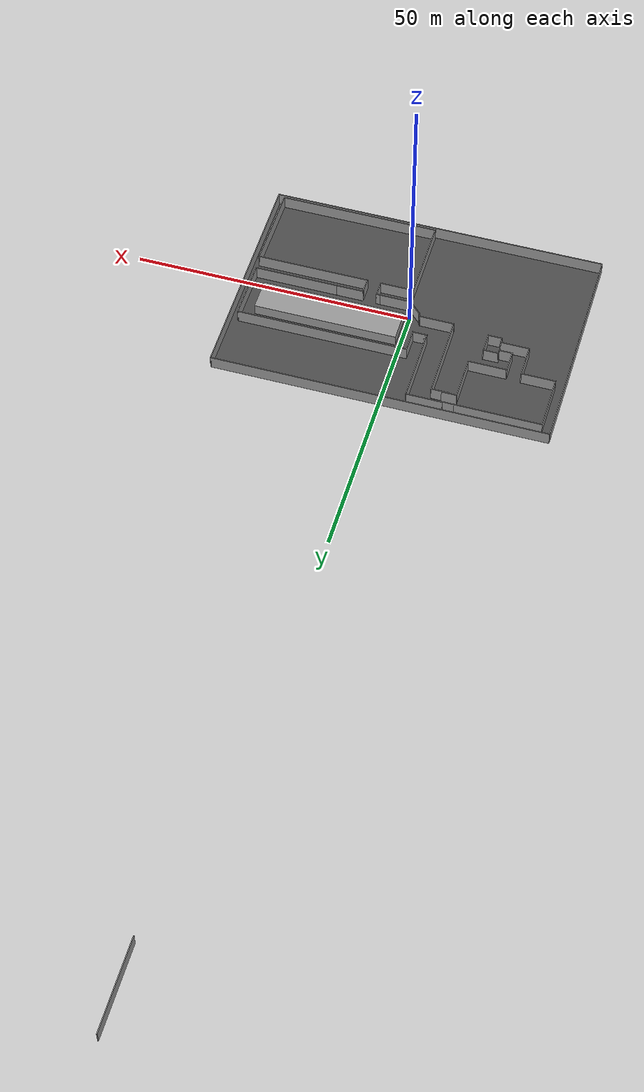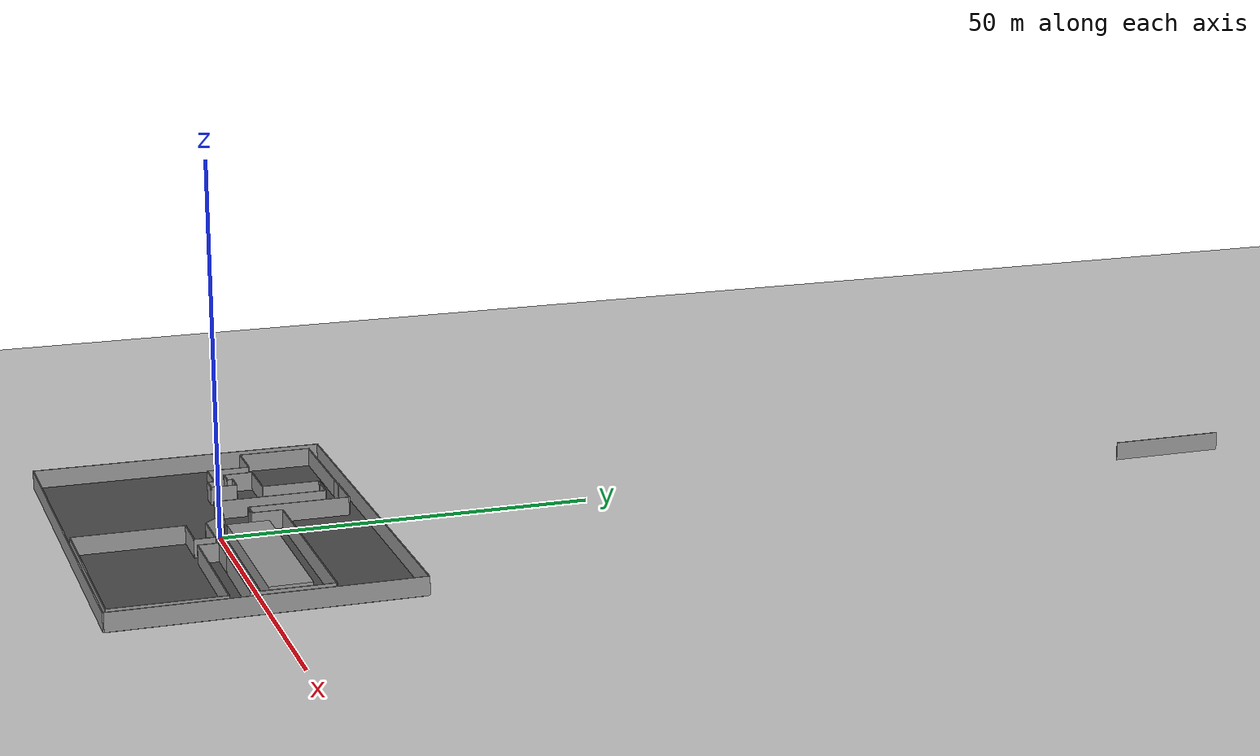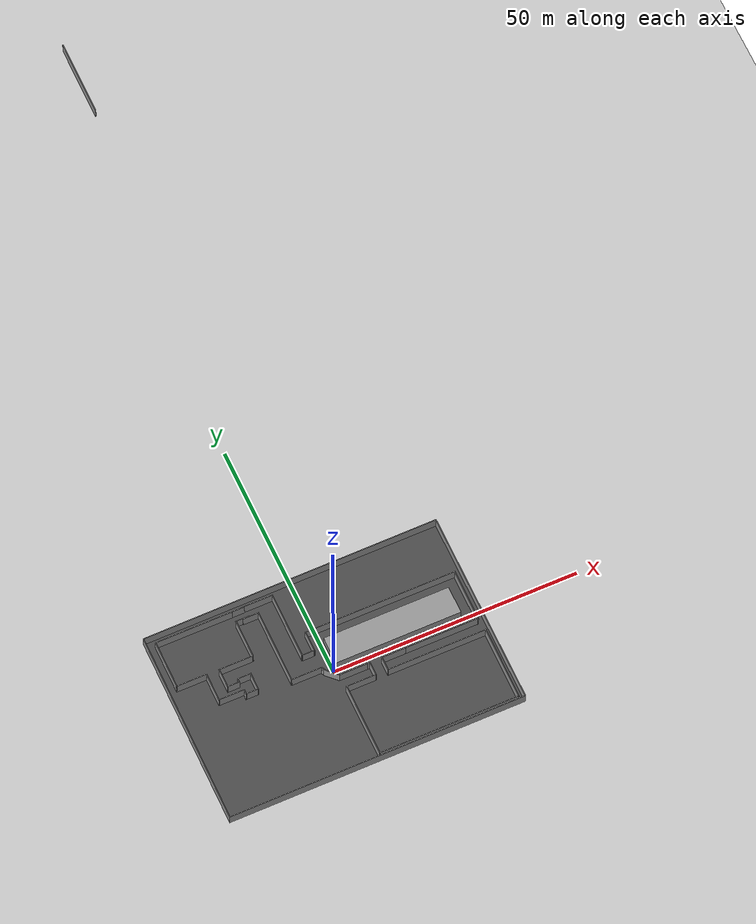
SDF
<sdf version="1.6">
 <world name="default">
  <light name="sun" type="directional">
   <pose>0 0 10 0 -0 0</pose>
   <diffuse>0.8 0.8 0.8 1</diffuse>
   <specular>0.2 0.2 0.2 1</specular>
   <attenuation>
    <range>1000</range>
    <constant>0.9</constant>
    <linear>0.01</linear>
    <quadratic>0.001</quadratic>
   </attenuation>
   <direction>-0.5 0.1 -0.9</direction>
  </light>
  <model name="ground_plane">
   <static>1</static>
   <link name="link">
    <collision name="collision">
     <geometry><plane><normal>0 0 1</normal><size>100 100</size></plane></geometry>
     <surface>
      <contact><collide_bitmask>65535</collide_bitmask></contact>
      <friction><ode><mu>100</mu><mu2>50</mu2></ode></friction>
     </surface>
    </collision>
    <visual name="visual">
     <cast_shadows>0</cast_shadows>
     <geometry><plane><normal>0 0 1</normal><size>100 100</size></plane></geometry>
     <material>
      <script><uri>file://media/materials/scripts/gazebo.material</uri><name>Gazebo/Grey</name></script>
     </material>
    </visual>
   </link>
  </model>
  <gravity>0 0 -9.8</gravity>
  <magnetic_field>6e-06 2.3e-05 -4.2e-05</magnetic_field>
  <atmosphere type="adiabatic"/>
  <physics name="default_physics" default="0" type="ode">
   <max_step_size>0.001</max_step_size>
   <real_time_factor>1</real_time_factor>
   <real_time_update_rate>1000</real_time_update_rate>
  </physics>
  <scene><ambient>0.4 0.4 0.4 1</ambient><background>0.7 0.7 0.7 1</background><shadows>1</shadows></scene>
  <audio><device>default</device></audio>
  <spherical_coordinates>
   <surface_model>EARTH_WGS84</surface_model>
   <latitude_deg>0</latitude_deg>
   <longitude_deg>0</longitude_deg>
   <elevation>0</elevation>
   <heading_deg>0</heading_deg>
  </spherical_coordinates>
  <model name="base1">
   <pose>0.082293 0.005919 0 0 -0 0</pose>
   <link name="Wall_0">
    <collision name="Wall_0_Collision">
     <geometry><box><size>60.15 0.15 2.5</size></box></geometry>
     <pose>0 0 1.25 0 -0 0</pose>
    </collision>
    <visual name="Wall_0_Visual">
     <pose>0 0 1.25 0 -0 0</pose>
     <geometry><box><size>60.15 0.15 2.5</size></box></geometry>
     <material>
      <script><uri>file://media/materials/scripts/gazebo.material</uri><name>Gazebo/Grey</name></script>
      <ambient>1 1 1 1</ambient>
     </material>
     <meta><layer>0</layer></meta>
    </visual>
    <pose>0 19.8688 0 0 -0 0.0025</pose>
   </link>
   <link name="Wall_1">
    <collision name="Wall_1_Collision">
     <geometry><box><size>39.9818 0.15 2.5</size></box></geometry>
     <pose>0 0 1.25 0 -0 0</pose>
    </collision>
    <visual name="Wall_1_Visual">
     <pose>0 0 1.25 0 -0 0</pose>
     <geometry><box><size>39.9818 0.15 2.5</size></box></geometry>
     <material>
      <script><uri>file://media/materials/scripts/gazebo.material</uri><name>Gazebo/Grey</name></script>
      <ambient>1 1 1 1</ambient>
     </material>
     <meta><layer>0</layer></meta>
    </visual>
    <pose>30 0.027935 0 0 -0 -1.5708</pose>
   </link>
   <link name="Wall_2">
    <collision name="Wall_2_Collision">
     <geometry><box><size>60.15 0.15 2.5</size></box></geometry>
     <pose>0 0 1.25 0 -0 0</pose>
    </collision>
    <visual name="Wall_2_Visual">
     <pose>0 0 1.25 0 -0 0</pose>
     <geometry><box><size>60.15 0.15 2.5</size></box></geometry>
     <material>
      <script><uri>file://media/materials/scripts/gazebo.material</uri><name>Gazebo/Grey</name></script>
      <ambient>1 1 1 1</ambient>
     </material>
     <meta><layer>0</layer></meta>
    </visual>
    <pose>0 -19.944 0 0 -0 3.14159</pose>
   </link>
   <link name="Wall_3">
    <collision name="Wall_3_Collision">
     <geometry><box><size>39.8318 0.15 2.5</size></box></geometry>
     <pose>0 0 1.25 0 -0 0</pose>
    </collision>
    <visual name="Wall_3_Visual">
     <pose>0 0 1.25 0 -0 0</pose>
     <geometry><box><size>39.8318 0.15 2.5</size></box></geometry>
     <material>
      <script><uri>file://media/materials/scripts/gazebo.material</uri><name>Gazebo/Grey</name></script>
      <ambient>1 1 1 1</ambient>
     </material>
     <meta><layer>0</layer></meta>
    </visual>
    <pose>-30 -0.047064 0 0 -0 1.5708</pose>
   </link>
   <static>1</static>
  </model>
  <model name="asphalt_plane">
   <static>1</static>
   <link name="link">
    <collision name="collision">
     <geometry><box><size>60.0234 39.7188 0.00153995</size></box></geometry>
    </collision>
    <visual name="visual">
     <cast_shadows>0</cast_shadows>
     <geometry><box><size>60.0234 39.7188 0.00153995</size></box></geometry>
     <material>
      <script>
       <uri>model://asphalt_plane/materials/scripts</uri>
       <uri>model://asphalt_plane/materials/textures</uri>
       <name>vrc/asphalt</name>
      </script>
     </material>
    </visual>
   </link>
   <pose>0.224679 -0.031142 0 0 -0 0</pose>
  </model>
  <model name="base2">
   <pose>14.8425 61.763 0 0 -0 0</pose>
   <link name="Wall_0">
    <collision name="Wall_0_Collision">
     <geometry><box><size>16 0.15 2.5</size></box></geometry>
     <pose>0 0 1.25 0 -0 0</pose>
    </collision>
    <visual name="Wall_0_Visual">
     <pose>0 0 1.25 0 -0 0</pose>
     <geometry><box><size>16 0.15 2.5</size></box></geometry>
     <material>
      <script><uri>file://media/materials/scripts/gazebo.material</uri><name>Gazebo/Grey</name></script>
      <ambient>1 1 1 1</ambient>
     </material>
     <meta><layer>0</layer></meta>
    </visual>
    <pose>-8.06233 73.3002 0 0 -0 -1.5708</pose>
   </link>
   <link name="Wall_13">
    <collision name="Wall_13_Collision">
     <geometry><box><size>28.449 0.15 2.5</size></box></geometry>
     <pose>0 0 1.25 0 -0 0</pose>
    </collision>
    <visual name="Wall_13_Visual">
     <pose>0 0 1.25 0 -0 0</pose>
     <geometry><box><size>28.449 0.15 2.5</size></box></geometry>
     <material>
      <script><uri>file://media/materials/scripts/gazebo.material</uri><name>Gazebo/Grey</name></script>
      <ambient>1 1 1 1</ambient>
     </material>
     <meta><layer>0</layer></meta>
    </visual>
    <pose>-0.067791 -81.2248 0 0 -0 3.14159</pose>
   </link>
   <link name="Wall_14">
    <collision name="Wall_14_Collision">
     <geometry><box><size>15 0.15 2.5</size></box></geometry>
     <pose>0 0 1.25 0 -0 0</pose>
    </collision>
    <visual name="Wall_14_Visual">
     <pose>0 0 1.25 0 -0 0</pose>
     <geometry><box><size>15 0.15 2.5</size></box></geometry>
     <material>
      <script><uri>file://media/materials/scripts/gazebo.material</uri><name>Gazebo/Grey</name></script>
      <ambient>1 1 1 1</ambient>
     </material>
     <meta><layer>0</layer></meta>
    </visual>
    <pose>-14.2173 -73.7998 0 0 -0 1.5708</pose>
   </link>
   <link name="Wall_16">
    <collision name="Wall_16_Collision">
     <geometry><box><size>15.0001 0.15 2.5</size></box></geometry>
     <pose>0 0 1.25 0 -0 0</pose>
    </collision>
    <visual name="Wall_16_Visual">
     <pose>0 0 1.25 0 -0 0</pose>
     <geometry><box><size>15.0001 0.15 2.5</size></box></geometry>
     <material>
      <script><uri>file://media/materials/scripts/gazebo.material</uri><name>Gazebo/Grey</name></script>
      <ambient>1 1 1 1</ambient>
     </material>
     <meta><layer>0</layer></meta>
    </visual>
    <pose>14.1492 -73.7998 0 0 -0 1.56171</pose>
   </link>
   <link name="Wall_18">
    <collision name="Wall_18_Collision">
     <geometry><box><size>6 0.15 2.5</size></box></geometry>
     <pose>0 0 1.25 0 -0 0</pose>
    </collision>
    <visual name="Wall_18_Visual">
     <pose>0 0 1.25 0 -0 0</pose>
     <geometry><box><size>6 0.15 2.5</size></box></geometry>
     <material>
      <script><uri>file://media/materials/scripts/gazebo.material</uri><name>Gazebo/Grey</name></script>
      <ambient>1 1 1 1</ambient>
     </material>
     <meta><layer>0</layer></meta>
    </visual>
    <pose>-11.2923 -66.3748 0 0 -0 0</pose>
   </link>
   <link name="Wall_20">
    <collision name="Wall_20_Collision">
     <geometry><box><size>20 0.15 2.5</size></box></geometry>
     <pose>0 0 1.25 0 -0 0</pose>
    </collision>
    <visual name="Wall_20_Visual">
     <pose>0 0 1.25 0 -0 0</pose>
     <geometry><box><size>20 0.15 2.5</size></box></geometry>
     <material>
      <script><uri>file://media/materials/scripts/gazebo.material</uri><name>Gazebo/Grey</name></script>
      <ambient>1 1 1 1</ambient>
     </material>
     <meta><layer>0</layer></meta>
    </visual>
    <pose>4.24665 -66.3748 0 0 -0 3.14159</pose>
   </link>
   <static>1</static>
  </model>
  <model name="base3">
   <pose>-19.1409 9.90963 0 0 -0 0</pose>
   <link name="Wall_24">
    <collision name="Wall_24_Collision">
     <geometry><box><size>15.5938 0.15 2.5</size></box></geometry>
     <pose>0 0 1.25 0 -0 0</pose>
    </collision>
    <visual name="Wall_24_Visual">
     <pose>0 0 1.25 0 -0 0</pose>
     <geometry><box><size>15.5938 0.15 2.5</size></box></geometry>
     <material>
      <script><uri>file://media/materials/scripts/gazebo.material</uri><name>Gazebo/Grey</name></script>
      <ambient>1 1 1 1</ambient>
     </material>
     <meta><layer>0</layer></meta>
    </visual>
    <pose>-1.30283 8.24113 0 0 -0 3.14159</pose>
   </link>
   <link name="Wall_25">
    <collision name="Wall_25_Collision">
     <geometry><box><size>9.93212 0.15 2.5</size></box></geometry>
     <pose>0 0 1.25 0 -0 0</pose>
    </collision>
    <visual name="Wall_25_Visual">
     <pose>0 0 1.25 0 -0 0</pose>
     <geometry><box><size>9.93212 0.15 2.5</size></box></geometry>
     <material>
      <script><uri>file://media/materials/scripts/gazebo.material</uri><name>Gazebo/Grey</name></script>
      <ambient>1 1 1 1</ambient>
     </material>
     <meta><layer>0</layer></meta>
    </visual>
    <pose>-9.025 3.35007 0 0 -0 -1.57083</pose>
   </link>
   <link name="Wall_26">
    <collision name="Wall_26_Collision">
     <geometry><box><size>6.18234 0.15 2.5</size></box></geometry>
     <pose>0 0 1.25 0 -0 0</pose>
    </collision>
    <visual name="Wall_26_Visual">
     <pose>0 0 1.25 0 -0 0</pose>
     <geometry><box><size>6.18234 0.15 2.5</size></box></geometry>
     <material>
      <script><uri>file://media/materials/scripts/gazebo.material</uri><name>Gazebo/Grey</name></script>
      <ambient>1 1 1 1</ambient>
     </material>
     <meta><layer>0</layer></meta>
    </visual>
    <pose>-6.009 -1.54093 0 0 -0 2e-05</pose>
   </link>
   <link name="Wall_27">
    <collision name="Wall_27_Collision">
     <geometry><box><size>5.90845 0.15 2.5</size></box></geometry>
     <pose>0 0 1.25 0 -0 0</pose>
    </collision>
    <visual name="Wall_27_Visual">
     <pose>0 0 1.25 0 -0 0</pose>
     <geometry><box><size>5.90845 0.15 2.5</size></box></geometry>
     <material>
      <script><uri>file://media/materials/scripts/gazebo.material</uri><name>Gazebo/Grey</name></script>
      <ambient>1 1 1 1</ambient>
     </material>
     <meta><layer>0</layer></meta>
    </visual>
    <pose>-2.99283 -4.41987 0 0 -0 -1.5708</pose>
   </link>
   <link name="Wall_28">
    <collision name="Wall_28_Collision">
     <geometry><box><size>5.25 0.15 2.5</size></box></geometry>
     <pose>0 0 1.25 0 -0 0</pose>
    </collision>
    <visual name="Wall_28_Visual">
     <pose>0 0 1.25 0 -0 0</pose>
     <geometry><box><size>5.25 0.15 2.5</size></box></geometry>
     <material>
      <script><uri>file://media/materials/scripts/gazebo.material</uri><name>Gazebo/Grey</name></script>
      <ambient>1 1 1 1</ambient>
     </material>
     <meta><layer>0</layer></meta>
    </visual>
    <pose>-0.442828 -7.29887 0 0 -0 0</pose>
   </link>
   <link name="Wall_29">
    <collision name="Wall_29_Collision">
     <geometry><box><size>1.092 0.15 2.5</size></box></geometry>
     <pose>0 0 1.25 0 -0 0</pose>
    </collision>
    <visual name="Wall_29_Visual">
     <pose>0 0 1.25 0 -0 0</pose>
     <geometry><box><size>1.092 0.15 2.5</size></box></geometry>
     <material>
      <script><uri>file://media/materials/scripts/gazebo.material</uri><name>Gazebo/Grey</name></script>
      <ambient>1 1 1 1</ambient>
     </material>
     <meta><layer>0</layer></meta>
    </visual>
    <pose>2.10717 -7.76987 0 0 -0 -1.5708</pose>
   </link>
   <link name="Wall_30">
    <collision name="Wall_30_Collision">
     <geometry><box><size>2.595 0.15 2.5</size></box></geometry>
     <pose>0 0 1.25 0 -0 0</pose>
    </collision>
    <visual name="Wall_30_Visual">
     <pose>0 0 1.25 0 -0 0</pose>
     <geometry><box><size>2.595 0.15 2.5</size></box></geometry>
     <material>
      <script><uri>file://media/materials/scripts/gazebo.material</uri><name>Gazebo/Grey</name></script>
      <ambient>1 1 1 1</ambient>
     </material>
     <meta><layer>0</layer></meta>
    </visual>
    <pose>3.32967 -8.24087 0 0 -0 0</pose>
   </link>
   <link name="Wall_31">
    <collision name="Wall_31_Collision">
     <geometry><box><size>3.59352 0.15 2.5</size></box></geometry>
     <pose>0 0 1.25 0 -0 0</pose>
    </collision>
    <visual name="Wall_31_Visual">
     <pose>0 0 1.25 0 -0 0</pose>
     <geometry><box><size>3.59352 0.15 2.5</size></box></geometry>
     <material>
      <script><uri>file://media/materials/scripts/gazebo.material</uri><name>Gazebo/Grey</name></script>
      <ambient>1 1 1 1</ambient>
     </material>
     <meta><layer>0</layer></meta>
    </visual>
    <pose>4.55217 -6.51937 0 0 -0 1.5708</pose>
   </link>
   <link name="Wall_32">
    <collision name="Wall_32_Collision">
     <geometry><box><size>2.836 0.15 2.5</size></box></geometry>
     <pose>0 0 1.25 0 -0 0</pose>
    </collision>
    <visual name="Wall_32_Visual">
     <pose>0 0 1.25 0 -0 0</pose>
     <geometry><box><size>2.836 0.15 2.5</size></box></geometry>
     <material>
      <script><uri>file://media/materials/scripts/gazebo.material</uri><name>Gazebo/Grey</name></script>
      <ambient>1 1 1 1</ambient>
     </material>
     <meta><layer>0</layer></meta>
    </visual>
    <pose>3.20917 -4.79787 0 0 -0 3.14159</pose>
   </link>
   <link name="Wall_33">
    <collision name="Wall_33_Collision">
     <geometry><box><size>0.845597 0.15 2.5</size></box></geometry>
     <pose>0 0 1.25 0 -0 0</pose>
    </collision>
    <visual name="Wall_33_Visual">
     <pose>0 0 1.25 0 -0 0</pose>
     <geometry><box><size>0.845597 0.15 2.5</size></box></geometry>
     <material>
      <script><uri>file://media/materials/scripts/gazebo.material</uri><name>Gazebo/Grey</name></script>
      <ambient>1 1 1 1</ambient>
     </material>
     <meta><layer>0</layer></meta>
    </visual>
    <pose>1.8955 -5.14443 0 0 -0 -1.48636</pose>
   </link>
   <link name="Wall_34">
    <collision name="Wall_34_Collision">
     <geometry><box><size>2.43391 0.15 2.5</size></box></geometry>
     <pose>0 0 1.25 0 -0 0</pose>
    </collision>
    <visual name="Wall_34_Visual">
     <pose>0 0 1.25 0 -0 0</pose>
     <geometry><box><size>2.43391 0.15 2.5</size></box></geometry>
     <material>
      <script><uri>file://media/materials/scripts/gazebo.material</uri><name>Gazebo/Grey</name></script>
      <ambient>1 1 1 1</ambient>
     </material>
     <meta><layer>0</layer></meta>
    </visual>
    <pose>0.782876 -5.49099 0 0 -0 3.14159</pose>
   </link>
   <link name="Wall_35">
    <collision name="Wall_35_Collision">
     <geometry><box><size>4 0.15 2.5</size></box></geometry>
     <pose>0 0 1.25 0 -0 0</pose>
    </collision>
    <visual name="Wall_35_Visual">
     <pose>0 0 1.25 0 -0 0</pose>
     <geometry><box><size>4 0.15 2.5</size></box></geometry>
     <material>
      <script><uri>file://media/materials/scripts/gazebo.material</uri><name>Gazebo/Grey</name></script>
      <ambient>1 1 1 1</ambient>
     </material>
     <meta><layer>0</layer></meta>
    </visual>
    <pose>-0.427089 -3.56599 0 0 -0 1.5708</pose>
   </link>
   <link name="Wall_36">
    <collision name="Wall_36_Collision">
     <geometry><box><size>6.93391 0.15 2.5</size></box></geometry>
     <pose>0 0 1.25 0 -0 0</pose>
    </collision>
    <visual name="Wall_36_Visual">
     <pose>0 0 1.25 0 -0 0</pose>
     <geometry><box><size>6.93391 0.15 2.5</size></box></geometry>
     <material>
      <script><uri>file://media/materials/scripts/gazebo.material</uri><name>Gazebo/Grey</name></script>
      <ambient>1 1 1 1</ambient>
     </material>
     <meta><layer>0</layer></meta>
    </visual>
    <pose>3.03288 -1.64099 0 0 -0 0</pose>
   </link>
   <link name="Wall_37">
    <collision name="Wall_37_Collision">
     <geometry><box><size>7.95612 0.15 2.5</size></box></geometry>
     <pose>0 0 1.25 0 -0 0</pose>
    </collision>
    <visual name="Wall_37_Visual">
     <pose>0 0 1.25 0 -0 0</pose>
     <geometry><box><size>7.95612 0.15 2.5</size></box></geometry>
     <material>
      <script><uri>file://media/materials/scripts/gazebo.material</uri><name>Gazebo/Grey</name></script>
      <ambient>1 1 1 1</ambient>
     </material>
     <meta><layer>0</layer></meta>
    </visual>
    <pose>6.425 2.26207 0 0 -0 1.57075</pose>
   </link>
   <link name="Wall_38">
    <collision name="Wall_38_Collision">
     <geometry><box><size>2.75 0.15 2.5</size></box></geometry>
     <pose>0 0 1.25 0 -0 0</pose>
    </collision>
    <visual name="Wall_38_Visual">
     <pose>0 0 1.25 0 -0 0</pose>
     <geometry><box><size>2.75 0.15 2.5</size></box></geometry>
     <material>
      <script><uri>file://media/materials/scripts/gazebo.material</uri><name>Gazebo/Grey</name></script>
      <ambient>1 1 1 1</ambient>
     </material>
     <meta><layer>0</layer></meta>
    </visual>
    <pose>7.72517 6.16513 0 0 -0 0</pose>
   </link>
   <link name="Wall_40">
    <collision name="Wall_40_Collision">
     <geometry><box><size>2.697 0.15 2.5</size></box></geometry>
     <pose>0 0 1.25 0 -0 0</pose>
    </collision>
    <visual name="Wall_40_Visual">
     <pose>0 0 1.25 0 -0 0</pose>
     <geometry><box><size>2.697 0.15 2.5</size></box></geometry>
     <material>
      <script><uri>file://media/materials/scripts/gazebo.material</uri><name>Gazebo/Grey</name></script>
      <ambient>1 1 1 1</ambient>
     </material>
     <meta><layer>0</layer></meta>
    </visual>
    <pose>7.69267 8.24113 0 0 -0 3.14159</pose>
   </link>
   <static>1</static>
  </model>
  <model name="base6">
   <pose>13.4712 2.02962 0 0 -0 0</pose>
   <link name="Wall_82">
    <collision name="Wall_82_Collision">
     <geometry><box><size>3.25 0.15 2.5</size></box></geometry>
     <pose>0 0 1.25 0 -0 0</pose>
    </collision>
    <visual name="Wall_82_Visual">
     <pose>0 0 1.25 0 -0 0</pose>
     <geometry><box><size>3.25 0.15 2.5</size></box></geometry>
     <material>
      <script><uri>file://media/materials/scripts/gazebo.material</uri><name>Gazebo/Grey</name></script>
      <ambient>1 1 1 1</ambient>
     </material>
     <meta><layer>0</layer></meta>
    </visual>
    <pose>-14.1828 -2.85309 0 0 -0 -0.785398</pose>
   </link>
   <link name="Wall_83">
    <collision name="Wall_83_Collision">
     <geometry><box><size>5.75 0.15 2.5</size></box></geometry>
     <pose>0 0 1.25 0 -0 0</pose>
    </collision>
    <visual name="Wall_83_Visual">
     <pose>0 0 1.25 0 -0 0</pose>
     <geometry><box><size>5.75 0.15 2.5</size></box></geometry>
     <material>
      <script><uri>file://media/materials/scripts/gazebo.material</uri><name>Gazebo/Grey</name></script>
      <ambient>1 1 1 1</ambient>
     </material>
     <meta><layer>0</layer></meta>
    </visual>
    <pose>-10.2868 -3.9491 0 0 -0 0</pose>
   </link>
   <link name="Wall_85">
    <collision name="Wall_85_Collision">
     <geometry><box><size>0.75 0.15 2.5</size></box></geometry>
     <pose>0 0 1.25 0 -0 0</pose>
    </collision>
    <visual name="Wall_85_Visual">
     <pose>0 0 1.25 0 -0 0</pose>
     <geometry><box><size>0.75 0.15 2.5</size></box></geometry>
     <material>
      <script><uri>file://media/materials/scripts/gazebo.material</uri><name>Gazebo/Grey</name></script>
      <ambient>1 1 1 1</ambient>
     </material>
     <meta><layer>0</layer></meta>
    </visual>
    <pose>-7.18682 -3.9491 0 0 -0 0</pose>
   </link>
   <link name="Wall_87">
    <collision name="Wall_87_Collision">
     <geometry><box><size>15 0.15 2.5</size></box></geometry>
     <pose>0 0 1.25 0 -0 0</pose>
    </collision>
    <visual name="Wall_87_Visual">
     <pose>0 0 1.25 0 -0 0</pose>
     <geometry><box><size>15 0.15 2.5</size></box></geometry>
     <material>
      <script><uri>file://media/materials/scripts/gazebo.material</uri><name>Gazebo/Grey</name></script>
      <ambient>1 1 1 1</ambient>
     </material>
     <meta><layer>0</layer></meta>
    </visual>
    <pose>7.82915 -3.92255 0 0 -0 0</pose>
   </link>
   <link name="Wall_88">
    <collision name="Wall_88_Collision">
     <geometry><box><size>10.7777 0.15 2.5</size></box></geometry>
     <pose>0 0 1.25 0 -0 0</pose>
    </collision>
    <visual name="Wall_88_Visual">
     <pose>0 0 1.25 0 -0 0</pose>
     <geometry><box><size>10.7777 0.15 2.5</size></box></geometry>
     <material>
      <script><uri>file://media/materials/scripts/gazebo.material</uri><name>Gazebo/Grey</name></script>
      <ambient>1 1 1 1</ambient>
     </material>
     <meta><layer>0</layer></meta>
    </visual>
    <pose>15.2818 1.33495 0 0 -0 1.56559</pose>
   </link>
   <link name="Wall_89">
    <collision name="Wall_89_Collision">
     <geometry><box><size>30.75 0.15 2.5</size></box></geometry>
     <pose>0 0 1.25 0 -0 0</pose>
    </collision>
    <visual name="Wall_89_Visual">
     <pose>0 0 1.25 0 -0 0</pose>
     <geometry><box><size>30.75 0.15 2.5</size></box></geometry>
     <material>
      <script><uri>file://media/materials/scripts/gazebo.material</uri><name>Gazebo/Grey</name></script>
      <ambient>1 1 1 1</ambient>
     </material>
     <meta><layer>0</layer></meta>
    </visual>
    <pose>0.009526 6.64871 0 0 -0 3.14159</pose>
   </link>
   <link name="Wall_90">
    <collision name="Wall_90_Collision">
     <geometry><box><size>4.25 0.15 2.5</size></box></geometry>
     <pose>0 0 1.25 0 -0 0</pose>
    </collision>
    <visual name="Wall_90_Visual">
     <pose>0 0 1.25 0 -0 0</pose>
     <geometry><box><size>4.25 0.15 2.5</size></box></geometry>
     <material>
      <script><uri>file://media/materials/scripts/gazebo.material</uri><name>Gazebo/Grey</name></script>
      <ambient>1 1 1 1</ambient>
     </material>
     <meta><layer>0</layer></meta>
    </visual>
    <pose>-15.2905 4.59871 0 0 -0 -1.5708</pose>
   </link>
   <link name="Wall_93">
    <collision name="Wall_93_Collision">
     <geometry><box><size>5 0.15 2.5</size></box></geometry>
     <pose>0 0 1.25 0 -0 0</pose>
    </collision>
    <visual name="Wall_93_Visual">
     <pose>0 0 1.25 0 -0 0</pose>
     <geometry><box><size>5 0.15 2.5</size></box></geometry>
     <material>
      <script><uri>file://media/materials/scripts/gazebo.material</uri><name>Gazebo/Grey</name></script>
      <ambient>1 1 1 1</ambient>
     </material>
     <meta><layer>0</layer></meta>
    </visual>
    <pose>-2.02085 -3.92255 0 0 -0 3.14159</pose>
   </link>
   <link name="Wall_95">
    <collision name="Wall_95_Collision">
     <geometry><box><size>2.87 0.15 2.5</size></box></geometry>
     <pose>0 0 1.25 0 -0 0</pose>
    </collision>
    <visual name="Wall_95_Visual">
     <pose>0 0 1.25 0 -0 0</pose>
     <geometry><box><size>2.87 0.15 2.5</size></box></geometry>
     <material>
      <script><uri>file://media/materials/scripts/gazebo.material</uri><name>Gazebo/Grey</name></script>
      <ambient>1 1 1 1</ambient>
     </material>
     <meta><layer>0</layer></meta>
    </visual>
    <pose>-4.44585 -5.28255 0 0 -0 -1.5708</pose>
   </link>
   <link name="Wall_97">
    <collision name="Wall_97_Collision">
     <geometry><box><size>2.85 0.15 2.5</size></box></geometry>
     <pose>0 0 1.25 0 -0 0</pose>
    </collision>
    <visual name="Wall_97_Visual">
     <pose>0 0 1.25 0 -0 0</pose>
     <geometry><box><size>2.85 0.15 2.5</size></box></geometry>
     <material>
      <script><uri>file://media/materials/scripts/gazebo.material</uri><name>Gazebo/Grey</name></script>
      <ambient>1 1 1 1</ambient>
     </material>
     <meta><layer>0</layer></meta>
    </visual>
    <pose>-6.88682 -5.2991 0 0 -0 -1.5708</pose>
   </link>
   <static>1</static>
  </model>
  <model name="rode1">
   <pose>-6.52025 9.26703 0 0 -0 0</pose>
   <link name="Wall_138">
    <collision name="Wall_138_Collision">
     <geometry><box><size>2.5 0.15 2.5</size></box></geometry>
     <pose>0 0 1.25 0 -0 0</pose>
    </collision>
    <visual name="Wall_138_Visual">
     <pose>0 0 1.25 0 -0 0</pose>
     <geometry><box><size>2.5 0.15 2.5</size></box></geometry>
     <material>
      <script><uri>file://media/materials/scripts/gazebo.material</uri><name>Gazebo/Grey</name></script>
      <ambient>1 1 1 1</ambient>
     </material>
     <meta><layer>0</layer></meta>
    </visual>
    <pose>3.35746 -4.64109 0 0 -0 0</pose>
   </link>
   <link name="Wall_139">
    <collision name="Wall_139_Collision">
     <geometry><box><size>2.5 0.15 2.5</size></box></geometry>
     <pose>0 0 1.25 0 -0 0</pose>
    </collision>
    <visual name="Wall_139_Visual">
     <pose>0 0 1.25 0 -0 0</pose>
     <geometry><box><size>2.5 0.15 2.5</size></box></geometry>
     <material>
      <script><uri>file://media/materials/scripts/gazebo.material</uri><name>Gazebo/Grey</name></script>
      <ambient>1 1 1 1</ambient>
     </material>
     <meta><layer>0</layer></meta>
    </visual>
    <pose>3.35746 -4.64109 0 0 -0 3.14159</pose>
   </link>
   <link name="Wall_140">
    <collision name="Wall_140_Collision">
     <geometry><box><size>13.75 0.15 2.5</size></box></geometry>
     <pose>0 0 1.25 0 -0 0</pose>
    </collision>
    <visual name="Wall_140_Visual">
     <pose>0 0 1.25 0 -0 0</pose>
     <geometry><box><size>13.75 0.15 2.5</size></box></geometry>
     <material>
      <script><uri>file://media/materials/scripts/gazebo.material</uri><name>Gazebo/Grey</name></script>
      <ambient>1 1 1 1</ambient>
     </material>
     <meta><layer>0</layer></meta>
    </visual>
    <pose>2.18246 2.15891 0 0 -0 1.5708</pose>
   </link>
   <link name="Wall_141">
    <collision name="Wall_141_Collision">
     <geometry><box><size>6.5 0.15 2.5</size></box></geometry>
     <pose>0 0 1.25 0 -0 0</pose>
    </collision>
    <visual name="Wall_141_Visual">
     <pose>0 0 1.25 0 -0 0</pose>
     <geometry><box><size>6.5 0.15 2.5</size></box></geometry>
     <material>
      <script><uri>file://media/materials/scripts/gazebo.material</uri><name>Gazebo/Grey</name></script>
      <ambient>1 1 1 1</ambient>
     </material>
     <meta><layer>0</layer></meta>
    </visual>
    <pose>-0.992542 8.95891 0 0 -0 3.14159</pose>
   </link>
   <link name="Wall_144">
    <collision name="Wall_144_Collision">
     <geometry><box><size>0.75 0.15 2.5</size></box></geometry>
     <pose>0 0 1.25 0 -0 0</pose>
    </collision>
    <visual name="Wall_144_Visual">
     <pose>0 0 1.25 0 -0 0</pose>
     <geometry><box><size>0.75 0.15 2.5</size></box></geometry>
     <material>
      <script><uri>file://media/materials/scripts/gazebo.material</uri><name>Gazebo/Grey</name></script>
      <ambient>1 1 1 1</ambient>
     </material>
     <meta><layer>0</layer></meta>
    </visual>
    <pose>4.58627 -8.67165 0 0 -0 -1.0472</pose>
   </link>
   <link name="Wall_145">
    <collision name="Wall_145_Collision">
     <geometry><box><size>0.75 0.15 2.5</size></box></geometry>
     <pose>0 0 1.25 0 -0 0</pose>
    </collision>
    <visual name="Wall_145_Visual">
     <pose>0 0 1.25 0 -0 0</pose>
     <geometry><box><size>0.75 0.15 2.5</size></box></geometry>
     <material>
      <script><uri>file://media/materials/scripts/gazebo.material</uri><name>Gazebo/Grey</name></script>
      <ambient>1 1 1 1</ambient>
     </material>
     <meta><layer>0</layer></meta>
    </visual>
    <pose>4.58627 -8.67165 0 0 -0 2.0944</pose>
   </link>
   <link name="Wall_146">
    <collision name="Wall_146_Collision">
     <geometry><box><size>6.25 0.15 2.5</size></box></geometry>
     <pose>0 0 1.25 0 -0 0</pose>
    </collision>
    <visual name="Wall_146_Visual">
     <pose>0 0 1.25 0 -0 0</pose>
     <geometry><box><size>6.25 0.15 2.5</size></box></geometry>
     <material>
      <script><uri>file://media/materials/scripts/gazebo.material</uri><name>Gazebo/Grey</name></script>
      <ambient>1 1 1 1</ambient>
     </material>
     <meta><layer>0</layer></meta>
    </visual>
    <pose>1.38627 -8.41184 0 0 -0 3.14159</pose>
   </link>
   <link name="Wall_147">
    <collision name="Wall_147_Collision">
     <geometry><box><size>15.25 0.15 2.5</size></box></geometry>
     <pose>0 0 1.25 0 -0 0</pose>
    </collision>
    <visual name="Wall_147_Visual">
     <pose>0 0 1.25 0 -0 0</pose>
     <geometry><box><size>15.25 0.15 2.5</size></box></geometry>
     <material>
      <script><uri>file://media/materials/scripts/gazebo.material</uri><name>Gazebo/Grey</name></script>
      <ambient>1 1 1 1</ambient>
     </material>
     <meta><layer>0</layer></meta>
    </visual>
    <pose>-1.66373 -0.861845 0 0 -0 1.5708</pose>
   </link>
   <link name="Wall_148">
    <collision name="Wall_148_Collision">
     <geometry><box><size>3.25 0.15 2.5</size></box></geometry>
     <pose>0 0 1.25 0 -0 0</pose>
    </collision>
    <visual name="Wall_148_Visual">
     <pose>0 0 1.25 0 -0 0</pose>
     <geometry><box><size>3.25 0.15 2.5</size></box></geometry>
     <material>
      <script><uri>file://media/materials/scripts/gazebo.material</uri><name>Gazebo/Grey</name></script>
      <ambient>1 1 1 1</ambient>
     </material>
     <meta><layer>0</layer></meta>
    </visual>
    <pose>-3.21373 6.68816 0 0 -0 3.14159</pose>
   </link>
   <static>1</static>
  </model>
  <model name="unit_box">
   <pose>13.6395 3.5192 0.5 0 -0 0</pose>
   <link name="link">
    <inertial>
     <mass>1</mass>
     <inertia>
      <ixx>0.166667</ixx>
      <ixy>0</ixy>
      <ixz>0</ixz>
      <iyy>0.166667</iyy>
      <iyz>0</iyz>
      <izz>0.166667</izz>
     </inertia>
    </inertial>
    <collision name="collision"><geometry><box><size>25.622 5.61877 3.21056</size></box></geometry></collision>
    <visual name="visual">
     <geometry><box><size>25.622 5.61877 3.21056</size></box></geometry>
     <material>
      <script><name>Gazebo/Grey</name><uri>file://media/materials/scripts/gazebo.material</uri></script>
     </material>
    </visual>
   </link>
  </model>
 </world>
</sdf>
